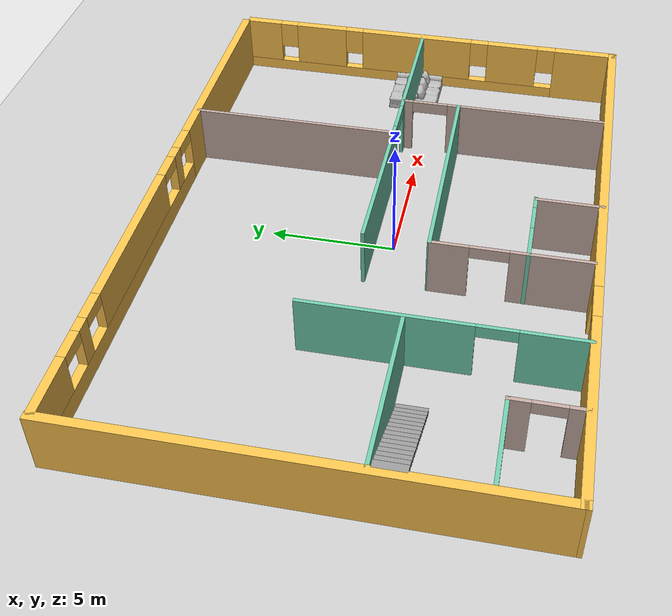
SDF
<sdf version="1.4">
 <world name="default">
  <include><uri>model://sun</uri></include>
  <include><uri>model://ground_plane</uri></include>
  <physics type="ode">
   <real_time_update_rate>1000.0</real_time_update_rate>
   <max_step_size>0.001</max_step_size>
   <real_time_factor>1</real_time_factor>
   <ode>
    <solver>
     <type>quick</type>
     <iters>150</iters>
     <precon_iters>0</precon_iters>
     <sor>1.400000</sor>
     <use_dynamic_moi_rescaling>1</use_dynamic_moi_rescaling>
    </solver>
    <constraints>
     <cfm>0.00001</cfm>
     <erp>0.2</erp>
     <contact_max_correcting_vel>2000.000000</contact_max_correcting_vel>
     <contact_surface_layer>0.01000</contact_surface_layer>
    </constraints>
   </ode>
  </physics>
  <scene><ambient>0.4 0.4 0.4 1</ambient><background>0.7 0.7 0.7 1</background><shadows>false</shadows></scene>
  <include><uri>model://Building</uri></include>
  <include>
   <name>bluesofa_1</name>
   <pose>10.817601 0.295002 0 0 0 1.571</pose>
   <uri>model://blue_sofa</uri>
  </include>
  <include>
   <name>bluesofa_2</name>
   <pose>10.770741 1.452286 0 0 0 -1.571</pose>
   <uri>model://blue_sofa</uri>
  </include>
 </world>
</sdf>
